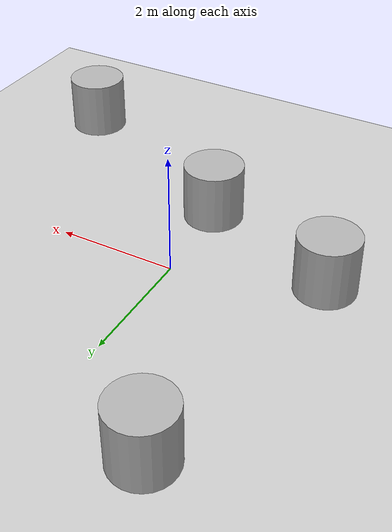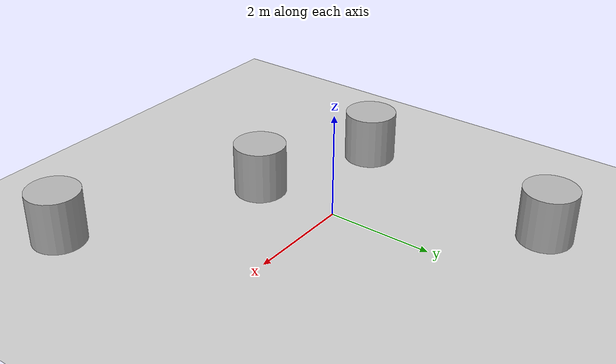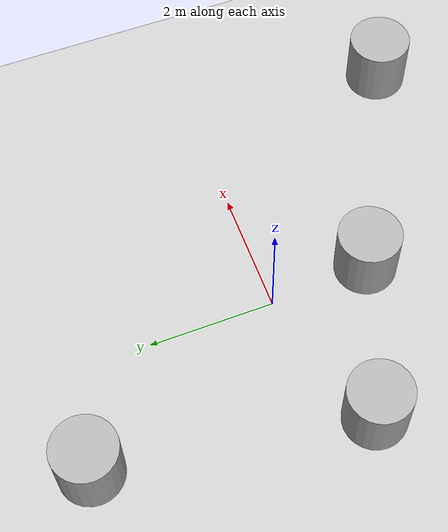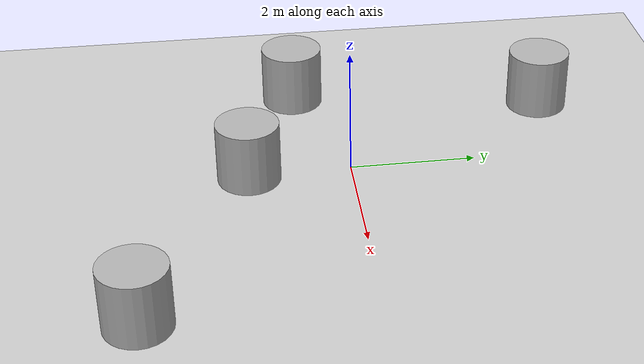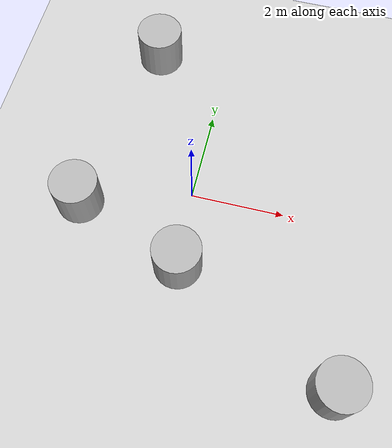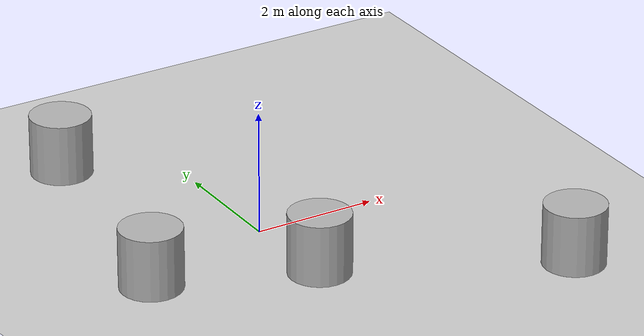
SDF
<sdf version="1.9">
 <world name="object_detection_world">
  <physics name="1ms" type="ignored">
   <max_step_size>0.001</max_step_size>
   <real_time_factor>1</real_time_factor>
   <real_time_update_rate>1000</real_time_update_rate>
  </physics>
  <plugin name="ignition::gazebo::systems::Physics" filename="libignition-gazebo-physics-system.so"/>
  <plugin name="ignition::gazebo::systems::UserCommands" filename="libignition-gazebo-user-commands-system.so"/>
  <plugin name="ignition::gazebo::systems::SceneBroadcaster" filename="libignition-gazebo-scene-broadcaster-system.so"/>
  <plugin name="ignition::gazebo::systems::Sensors" filename="libignition-gazebo-sensors-system.so">
   <render_engine>ogre2</render_engine>
  </plugin>
  <gravity>0 0 -9.8</gravity>
  <magnetic_field>6e-06 2.3e-05 -4.2e-05</magnetic_field>
  <atmosphere type="adiabatic"/>
  <scene><ambient>0.4 0.4 0.4 1</ambient><background>0.7 0.7 0.7 1</background><shadows>true</shadows></scene>
  <include>
   <uri>https://fuel.gazebosim.org/1.0/OpenRobotics/models/Ground%20Plane</uri>
   <name>ground_plane</name>
  </include>
  <model name="cylinder">
   <pose>3.55927 -3.34391 0.499999 0 -0 0</pose>
   <link name="cylinder_link">
    <inertial>
     <inertia><ixx>0.1458</ixx><ixy>0</ixy><ixz>0</ixz><iyy>0.1458</iyy><iyz>0</iyz><izz>0.125</izz></inertia>
     <mass>1</mass>
    </inertial>
    <collision name="cylinder_collision">
     <geometry><cylinder><radius>0.5</radius><length>1</length></cylinder></geometry>
    </collision>
    <visual name="cylinder_visual">
     <geometry><cylinder><radius>0.5</radius><length>1</length></cylinder></geometry>
     <material>
      <ambient>0.3 0.3 0.3 1</ambient>
      <diffuse>0.7 0.7 0.7 1</diffuse>
      <specular>1 1 1 1</specular>
     </material>
    </visual>
   </link>
  </model>
  <model name="cylinder_0">
   <pose>-1.6163 3.42231 0.499999 0 -0 -0</pose>
   <link name="cylinder_link">
    <inertial>
     <inertia><ixx>0.1458</ixx><ixy>0</ixy><ixz>0</ixz><iyy>0.1458</iyy><iyz>0</iyz><izz>0.125</izz></inertia>
     <mass>1</mass>
    </inertial>
    <collision name="cylinder_collision">
     <geometry><cylinder><radius>0.5</radius><length>1</length></cylinder></geometry>
    </collision>
    <visual name="cylinder_visual">
     <geometry><cylinder><radius>0.5</radius><length>1</length></cylinder></geometry>
     <material>
      <ambient>0.3 0.3 0.3 1</ambient>
      <diffuse>0.7 0.7 0.7 1</diffuse>
      <specular>1 1 1 1</specular>
     </material>
    </visual>
   </link>
  </model>
  <model name="cylinder_1">
   <pose>-2.29643 -0.712163 0.499999 0 -0 -0</pose>
   <link name="cylinder_link">
    <inertial>
     <inertia><ixx>0.1458</ixx><ixy>0</ixy><ixz>0</ixz><iyy>0.1458</iyy><iyz>0</iyz><izz>0.125</izz></inertia>
     <mass>1</mass>
    </inertial>
    <collision name="cylinder_collision">
     <geometry><cylinder><radius>0.5</radius><length>1</length></cylinder></geometry>
    </collision>
    <visual name="cylinder_visual">
     <geometry><cylinder><radius>0.5</radius><length>1</length></cylinder></geometry>
     <material>
      <ambient>0.3 0.3 0.3 1</ambient>
      <diffuse>0.7 0.7 0.7 1</diffuse>
      <specular>1 1 1 1</specular>
     </material>
    </visual>
   </link>
  </model>
  <model name="cylinder_2">
   <pose>0.10099 -1.61819 0.499999 -0 0 -0</pose>
   <link name="cylinder_link">
    <inertial>
     <inertia><ixx>0.1458</ixx><ixy>0</ixy><ixz>0</ixz><iyy>0.1458</iyy><iyz>0</iyz><izz>0.125</izz></inertia>
     <mass>1</mass>
    </inertial>
    <collision name="cylinder_collision">
     <geometry><cylinder><radius>0.5</radius><length>1</length></cylinder></geometry>
    </collision>
    <visual name="cylinder_visual">
     <geometry><cylinder><radius>0.5</radius><length>1</length></cylinder></geometry>
     <material>
      <ambient>0.3 0.3 0.3 1</ambient>
      <diffuse>0.7 0.7 0.7 1</diffuse>
      <specular>1 1 1 1</specular>
     </material>
    </visual>
   </link>
  </model>
  <light name="sun" type="directional">
   <pose>0 0 10 0 -0 0</pose>
   <intensity>1</intensity>
   <direction>-0.5 0.1 -0.9</direction>
   <diffuse>0.8 0.8 0.8 1</diffuse>
   <specular>0.2 0.2 0.2 1</specular>
   <attenuation>
    <range>1000</range>
    <linear>0.01</linear>
    <constant>0.9</constant>
    <quadratic>0.001</quadratic>
   </attenuation>
  </light>
 </world>
</sdf>
